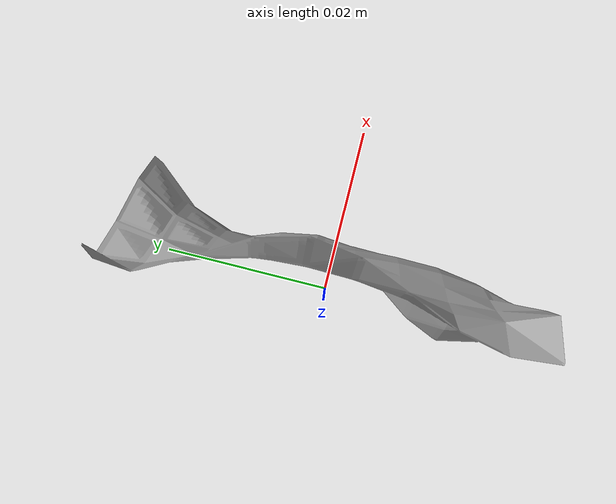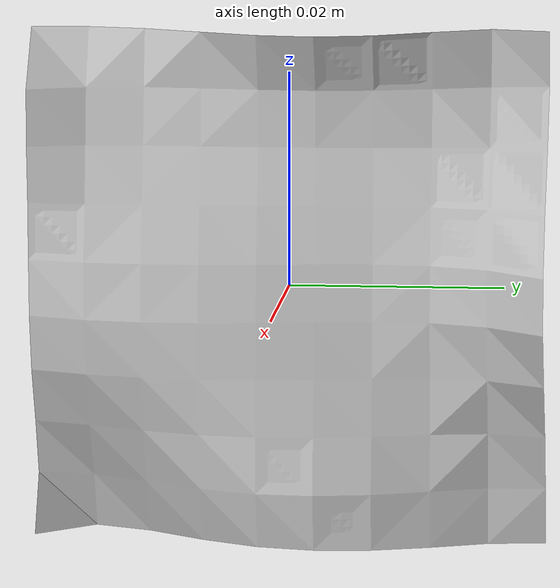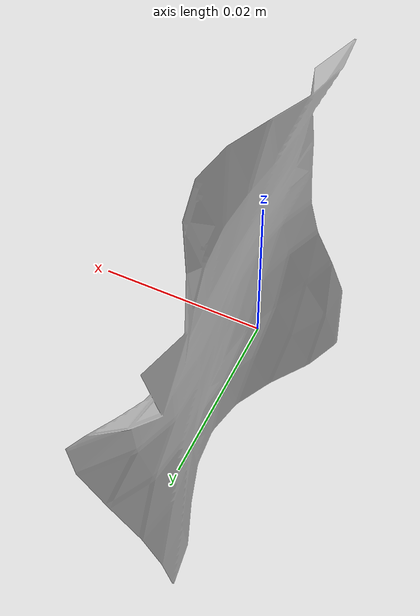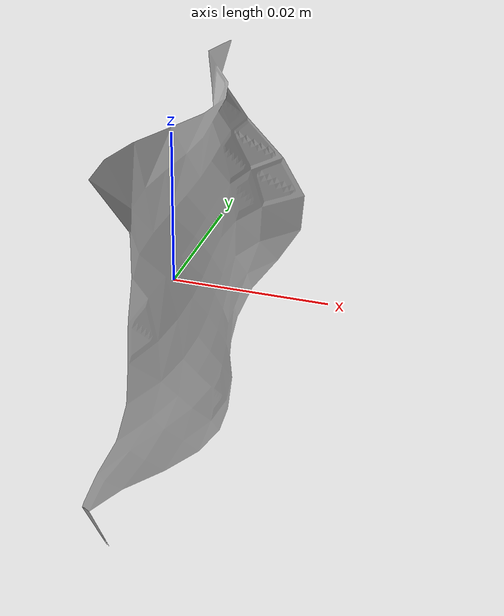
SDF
<?xml version='1.0'?>
<sdf version='1.6'>
  <model name="ID5_130">
  <static>true</static>
    <link name="link">
      <collision name="collision">
        <geometry>
          <mesh>
            <uri>model://test/meshes/ID5_130.dae</uri>
          </mesh>
        </geometry>
      </collision>

      <visual name='visual'>
        <geometry>
          <mesh>
            <uri>model://ID5_130/meshes/ID5_130.dae</uri>
          </mesh>
        </geometry>
      </visual>
    </link>

    </model>
  </sdf>
